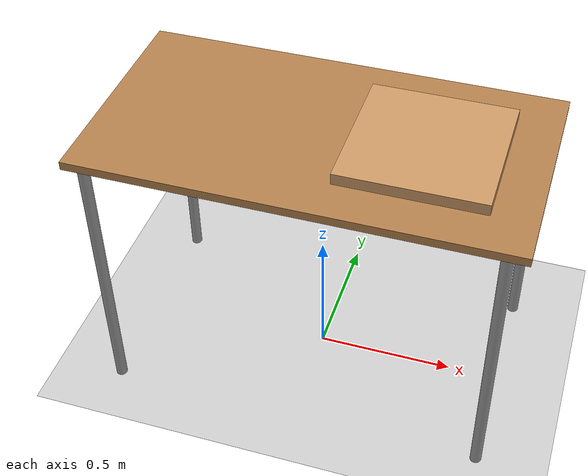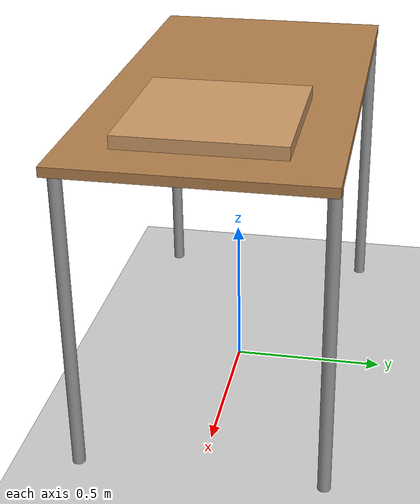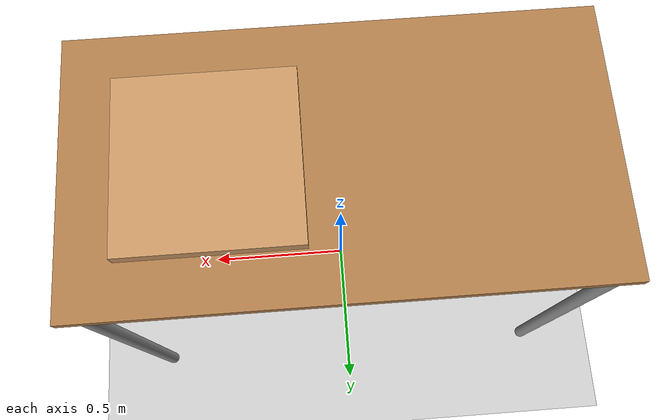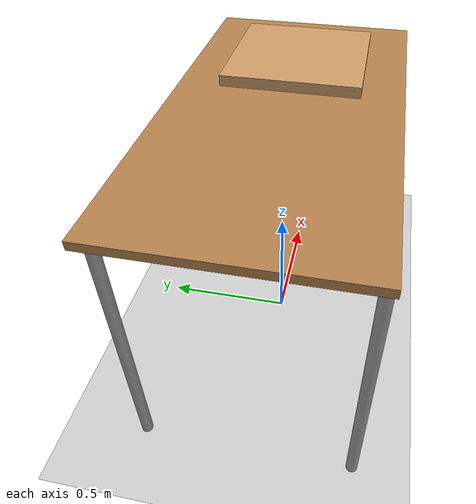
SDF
<sdf version="1.7">
 <world name="default">
  <scene>
   <ambient>0.6 0.6 0.6 1</ambient>
   <background>0.7 0.85 0.95 1</background>
   <shadows>true</shadows>
   <grid>false</grid>
  </scene>
  <physics name="default_physics" type="bullet">
   <max_step_size>0.001</max_step_size>
   <real_time_factor>1</real_time_factor>
  </physics>
  <plugin filename="gz-sim-physics-system" name="gz::sim::systems::Physics"/>
  <plugin filename="gz-sim-user-commands-system" name="gz::sim::systems::UserCommands"/>
  <plugin filename="gz-sim-scene-broadcaster-system" name="gz::sim::systems::SceneBroadcaster"/>
  <plugin filename="gz-sim-sensors-system" name="gz::sim::systems::Sensors">
   <render_engine>ogre2</render_engine>
  </plugin>
  <include><uri>https://fuel.gazebosim.org/1.0/OpenRobotics/models/Sun</uri></include>
  <include><uri>https://fuel.gazebosim.org/1.0/OpenRobotics/models/Ground Plane</uri></include>
  <include><name>mount_table</name><uri>model://mount_table</uri></include>
  <model name="table">
   <static>true</static>
   <pose>0.35 0.0 1.035 0 0 0</pose>
   <link name="link">
    <collision name="collision"><geometry><box><size>0.50 0.50 0.04</size></box></geometry></collision>
    <visual name="visual">
     <geometry><box><size>0.50 0.50 0.04</size></box></geometry>
     <material>
      <ambient>0.8 0.6 0.4 1</ambient>
      <diffuse>0.8 0.6 0.4 1</diffuse>
      <specular>0.2 0.2 0.2 1</specular>
     </material>
    </visual>
   </link>
  </model>
  <model name="drop_zone">
   <static>true</static>
   <pose>0.35 0.20 1.04 0 0 0</pose>
   <link name="link">
    <collision name="collision">
     <geometry><cylinder><radius>0.05</radius><length>0.005</length></cylinder></geometry>
    </collision>
    <visual name="visual">
     <geometry><cylinder><radius>0.05</radius><length>0.005</length></cylinder></geometry>
     <material>
      <ambient>0.1 0.9 0.1 0.4</ambient>
      <diffuse>0.1 0.9 0.1 0.4</diffuse>
      <specular>0.2 0.2 0.2 0.4</specular>
     </material>
     <transparency>0.6</transparency>
    </visual>
   </link>
  </model>
  <model name="showcase_cam">
   <static>true</static>
   <pose>1.2 -1.0 2.0 0 0.5134 2.2764</pose>
   <link name="link">
    <sensor name="showcase_cam" type="camera">
     <always_on>0</always_on>
     <update_rate>15</update_rate>
     <topic>showcase_cam/image</topic>
     <camera>
      <horizontal_fov>1.0</horizontal_fov>
      <image><width>960</width><height>540</height><format>R8G8B8</format></image>
      <clip><near>0.1</near><far>8</far></clip>
     </camera>
    </sensor>
   </link>
  </model>
 </world>
</sdf>

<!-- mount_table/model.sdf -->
<sdf version="1.5">
    <model name="mount_table">
        <static>true</static>
        <link name="link">
            <collision name="surface">
                <pose>0 0 1.0 0 0 0</pose>
                <geometry>
                    <box>
                        <size>1.5 0.8 0.03</size>
                    </box>
                </geometry>
                <surface>
                    <friction>
                        <ode>
                            <mu>0.6</mu>
                            <mu2>0.6</mu2>
                        </ode>
                    </friction>
                </surface>
            </collision>
            <visual name="visual1">
                <pose>0 0 1.0 0 0 0</pose>
                <geometry>
                    <box>
                        <size>1.5 0.8 0.03</size>
                    </box>
                </geometry>
                <material>
                    <diffuse>1.0 1.0 1.0</diffuse>
                    <script>
                        <uri>file://media/materials/scripts/gazebo.material</uri>
                        <name>Gazebo/Wood</name>
                    </script>
                    <!-- PBR for Ignition, material scripts for gazebo classic-->
                    <pbr>
                        <metal>
                            <albedo_map>model://mount_table/Table_Diffuse.jpg</albedo_map>
                        </metal>
                    </pbr>
                </material>
            </visual>
            <collision name="front_left_leg">
                <pose>0.68 0.38 0.5 0 0 0</pose>
                <geometry>
                    <cylinder>
                        <radius>0.02</radius>
                        <length>1.0</length>
                    </cylinder>
                </geometry>
            </collision>
            <visual name="front_left_leg">
                <pose>0.68 0.38 0.5 0 0 0</pose>
                <geometry>
                    <cylinder>
                        <radius>0.02</radius>
                        <length>1.0</length>
                    </cylinder>
                </geometry>
                <material>
                    <diffuse>0.5 0.5 0.5</diffuse>
                    <script>
                        <uri>file://media/materials/scripts/gazebo.material</uri>
                        <name>Gazebo/Grey</name>
                    </script>
                </material>
            </visual>
            <collision name="front_right_leg">
                <pose>0.68 -0.38 0.5 0 0 0</pose>
                <geometry>
                    <cylinder>
                        <radius>0.02</radius>
                        <length>1.0</length>
                    </cylinder>
                </geometry>
            </collision>
            <visual name="front_right_leg">
                <pose>0.68 -0.38 0.5 0 0 0</pose>
                <geometry>
                    <cylinder>
                        <radius>0.02</radius>
                        <length>1.0</length>
                    </cylinder>
                </geometry>
                <material>
                    <diffuse>0.5 0.5 0.5</diffuse>
                    <script>
                        <uri>file://media/materials/scripts/gazebo.material</uri>
                        <name>Gazebo/Grey</name>
                    </script>
                </material>
            </visual>
            <collision name="back_right_leg">
                <pose>-0.68 -0.38 0.5 0 0 0</pose>
                <geometry>
                    <cylinder>
                        <radius>0.02</radius>
                        <length>1.0</length>
                    </cylinder>
                </geometry>
            </collision>
            <visual name="back_right_leg">
                <pose>-0.68 -0.38 0.5 0 0 0</pose>
                <geometry>
                    <cylinder>
                        <radius>0.02</radius>
                        <length>1.0</length>
                    </cylinder>
                </geometry>
                <material>
                    <diffuse>0.5 0.5 0.5</diffuse>
                    <script>
                        <uri>file://media/materials/scripts/gazebo.material</uri>
                        <name>Gazebo/Grey</name>
                    </script>
                </material>
            </visual>
            <collision name="back_left_leg">
                <pose>-0.68 0.38 0.5 0 0 0</pose>
                <geometry>
                    <cylinder>
                        <radius>0.02</radius>
                        <length>1.0</length>
                    </cylinder>
                </geometry>
            </collision>
            <visual name="back_left_leg">
                <pose>-0.68 0.38 0.5 0 0 0</pose>
                <geometry>
                    <cylinder>
                        <radius>0.02</radius>
                        <length>1.0</length>
                    </cylinder>
                </geometry>
                <material>
                    <diffuse>0.5 0.5 0.5</diffuse>
                    <script>
                        <uri>file://media/materials/scripts/gazebo.material</uri>
                        <name>Gazebo/Grey</name>
                    </script>
                </material>
            </visual>
        </link>
    </model>
</sdf>
